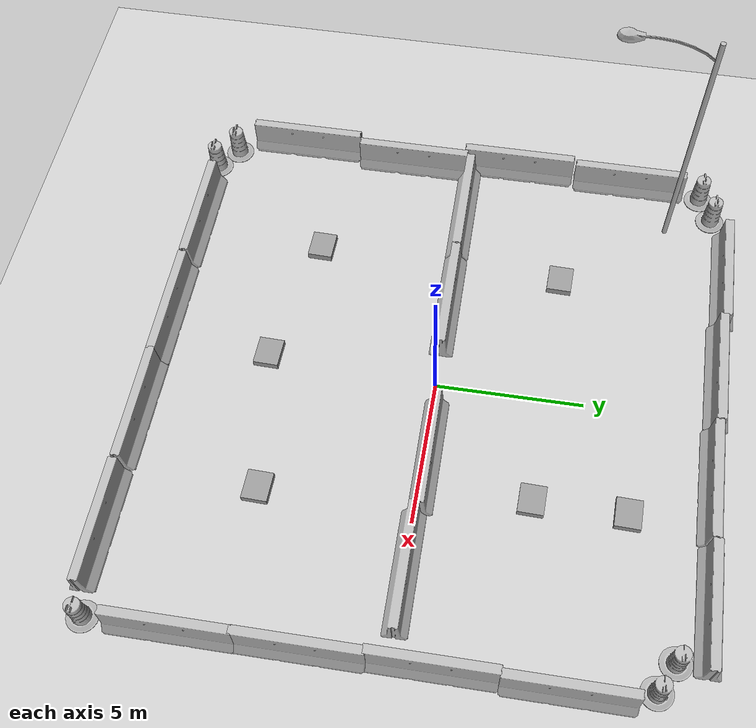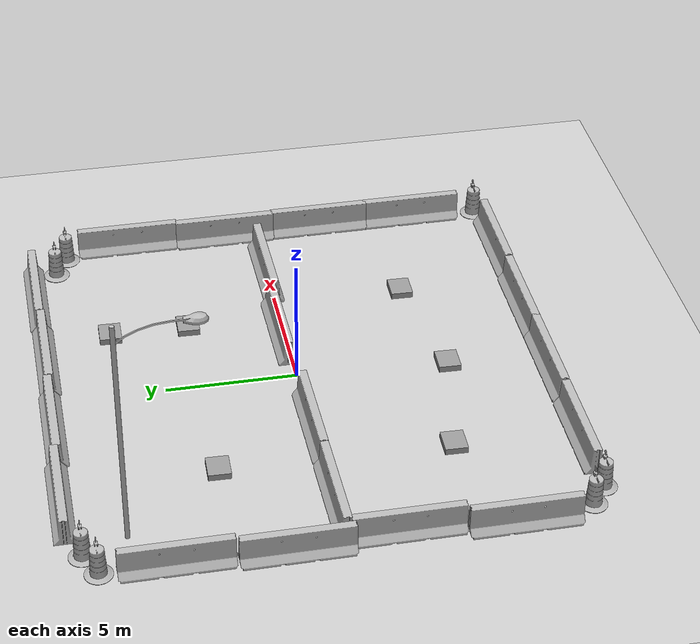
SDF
<sdf version="1.6">
 <world name="default">
  <light name="sun" type="directional">
   <pose>0 0 10 0 -0 0</pose>
   <diffuse>0.8 0.8 0.8 1</diffuse>
   <specular>0.2 0.2 0.2 1</specular>
   <attenuation>
    <range>1000</range>
    <constant>0.9</constant>
    <linear>0.01</linear>
    <quadratic>0.001</quadratic>
   </attenuation>
   <direction>-0.5 0.1 -0.9</direction>
  </light>
  <model name="ground_plane">
   <static>1</static>
   <link name="link">
    <collision name="collision">
     <geometry><plane><normal>0 0 1</normal><size>100 100</size></plane></geometry>
     <surface><friction><ode><mu>100</mu><mu2>50</mu2></ode></friction></surface>
    </collision>
    <visual name="visual">
     <cast_shadows>0</cast_shadows>
     <geometry><plane><normal>0 0 1</normal><size>100 100</size></plane></geometry>
     <material>
      <script><uri>file://media/materials/scripts/gazebo.material</uri><name>Gazebo/Grey</name></script>
     </material>
    </visual>
   </link>
  </model>
  <gravity>0 0 -9.8</gravity>
  <magnetic_field>6e-06 2.3e-05 -4.2e-05</magnetic_field>
  <atmosphere type="adiabatic"/>
  <physics name="default_physics" default="0" type="ode">
   <max_step_size>0.001</max_step_size>
   <real_time_factor>1</real_time_factor>
   <real_time_update_rate>1000</real_time_update_rate>
  </physics>
  <scene><ambient>0.4 0.4 0.4 1</ambient><background>0.7 0.7 0.7 1</background><shadows>1</shadows></scene>
  <spherical_coordinates>
   <surface_model>EARTH_WGS84</surface_model>
   <latitude_deg>0</latitude_deg>
   <longitude_deg>0</longitude_deg>
   <elevation>0</elevation>
   <heading_deg>0</heading_deg>
  </spherical_coordinates>
  <model name="jersey_barrier">
   <static>1</static>
   <link name="link">
    <visual name="visual">
     <geometry><mesh><uri>model://jersey_barrier/meshes/jersey_barrier.dae</uri></mesh></geometry>
    </visual>
    <collision name="upright">
     <pose>0 0 0.5715 0 -0 0</pose>
     <geometry><box><size>4.06542 0.3063 1.143</size></box></geometry>
    </collision>
    <collision name="base">
     <pose>0 0 0.032258 0 -0 0</pose>
     <geometry><box><size>4.06542 0.8107 0.064516</size></box></geometry>
    </collision>
    <collision name="base2">
     <pose>0 0 0.1 0 -0 0</pose>
     <geometry><box><size>4.06542 0.65 0.1</size></box></geometry>
    </collision>
    <collision name="base3">
     <pose>0 0 0.2 0 -0 0</pose>
     <geometry><box><size>4.06542 0.5 0.1</size></box></geometry>
    </collision>
    <collision name="left-angle">
     <pose>0 -0.224 0.2401 0.9 -0 0</pose>
     <geometry><box><size>4.06542 0.5 0.064516</size></box></geometry>
    </collision>
    <collision name="right-angle">
     <pose>0 0.224 0.2401 -0.9 0 0</pose>
     <geometry><box><size>4.06542 0.5 0.064516</size></box></geometry>
    </collision>
   </link>
   <pose>-5.65677 9.4608 0 0 -0 0</pose>
  </model>
  <model name="jersey_barrier_clone">
   <static>1</static>
   <link name="link">
    <visual name="visual">
     <geometry><mesh><uri>model://jersey_barrier/meshes/jersey_barrier.dae</uri></mesh></geometry>
    </visual>
    <collision name="upright">
     <pose>0 0 0.5715 0 -0 0</pose>
     <geometry><box><size>4.06542 0.3063 1.143</size></box></geometry>
    </collision>
    <collision name="base">
     <pose>0 0 0.032258 0 -0 0</pose>
     <geometry><box><size>4.06542 0.8107 0.064516</size></box></geometry>
    </collision>
    <collision name="base2">
     <pose>0 0 0.1 0 -0 0</pose>
     <geometry><box><size>4.06542 0.65 0.1</size></box></geometry>
    </collision>
    <collision name="base3">
     <pose>0 0 0.2 0 -0 0</pose>
     <geometry><box><size>4.06542 0.5 0.1</size></box></geometry>
    </collision>
    <collision name="left-angle">
     <pose>0 -0.224 0.2401 0.9 -0 0</pose>
     <geometry><box><size>4.06542 0.5 0.064516</size></box></geometry>
    </collision>
    <collision name="right-angle">
     <pose>0 0.224 0.2401 -0.9 0 0</pose>
     <geometry><box><size>4.06542 0.5 0.064516</size></box></geometry>
    </collision>
   </link>
   <pose>-1.65987 9.36075 0 0 -0 0</pose>
  </model>
  <model name="jersey_barrier_clone_0">
   <static>1</static>
   <link name="link">
    <visual name="visual">
     <geometry><mesh><uri>model://jersey_barrier/meshes/jersey_barrier.dae</uri></mesh></geometry>
    </visual>
    <collision name="upright">
     <pose>0 0 0.5715 0 -0 0</pose>
     <geometry><box><size>4.06542 0.3063 1.143</size></box></geometry>
    </collision>
    <collision name="base">
     <pose>0 0 0.032258 0 -0 0</pose>
     <geometry><box><size>4.06542 0.8107 0.064516</size></box></geometry>
    </collision>
    <collision name="base2">
     <pose>0 0 0.1 0 -0 0</pose>
     <geometry><box><size>4.06542 0.65 0.1</size></box></geometry>
    </collision>
    <collision name="base3">
     <pose>0 0 0.2 0 -0 0</pose>
     <geometry><box><size>4.06542 0.5 0.1</size></box></geometry>
    </collision>
    <collision name="left-angle">
     <pose>0 -0.224 0.2401 0.9 -0 0</pose>
     <geometry><box><size>4.06542 0.5 0.064516</size></box></geometry>
    </collision>
    <collision name="right-angle">
     <pose>0 0.224 0.2401 -0.9 0 0</pose>
     <geometry><box><size>4.06542 0.5 0.064516</size></box></geometry>
    </collision>
   </link>
   <pose>2.39773 9.29085 0 0 -0 0</pose>
  </model>
  <model name="jersey_barrier_clone_1">
   <static>1</static>
   <link name="link">
    <visual name="visual">
     <geometry><mesh><uri>model://jersey_barrier/meshes/jersey_barrier.dae</uri></mesh></geometry>
    </visual>
    <collision name="upright">
     <pose>0 0 0.5715 0 -0 0</pose>
     <geometry><box><size>4.06542 0.3063 1.143</size></box></geometry>
    </collision>
    <collision name="base">
     <pose>0 0 0.032258 0 -0 0</pose>
     <geometry><box><size>4.06542 0.8107 0.064516</size></box></geometry>
    </collision>
    <collision name="base2">
     <pose>0 0 0.1 0 -0 0</pose>
     <geometry><box><size>4.06542 0.65 0.1</size></box></geometry>
    </collision>
    <collision name="base3">
     <pose>0 0 0.2 0 -0 0</pose>
     <geometry><box><size>4.06542 0.5 0.1</size></box></geometry>
    </collision>
    <collision name="left-angle">
     <pose>0 -0.224 0.2401 0.9 -0 0</pose>
     <geometry><box><size>4.06542 0.5 0.064516</size></box></geometry>
    </collision>
    <collision name="right-angle">
     <pose>0 0.224 0.2401 -0.9 0 0</pose>
     <geometry><box><size>4.06542 0.5 0.064516</size></box></geometry>
    </collision>
   </link>
   <pose>6.45464 9.33993 0 0 -0 0</pose>
  </model>
  <model name="jersey_barrier_clone_3">
   <static>1</static>
   <link name="link">
    <visual name="visual">
     <geometry><mesh><uri>model://jersey_barrier/meshes/jersey_barrier.dae</uri></mesh></geometry>
    </visual>
    <collision name="upright">
     <pose>0 0 0.5715 0 -0 0</pose>
     <geometry><box><size>4.06542 0.3063 1.143</size></box></geometry>
    </collision>
    <collision name="base">
     <pose>0 0 0.032258 0 -0 0</pose>
     <geometry><box><size>4.06542 0.8107 0.064516</size></box></geometry>
    </collision>
    <collision name="base2">
     <pose>0 0 0.1 0 -0 0</pose>
     <geometry><box><size>4.06542 0.65 0.1</size></box></geometry>
    </collision>
    <collision name="base3">
     <pose>0 0 0.2 0 -0 0</pose>
     <geometry><box><size>4.06542 0.5 0.1</size></box></geometry>
    </collision>
    <collision name="left-angle">
     <pose>0 -0.224 0.2401 0.9 -0 0</pose>
     <geometry><box><size>4.06542 0.5 0.064516</size></box></geometry>
    </collision>
    <collision name="right-angle">
     <pose>0 0.224 0.2401 -0.9 0 0</pose>
     <geometry><box><size>4.06542 0.5 0.064516</size></box></geometry>
    </collision>
   </link>
   <pose>9.44656 5.35522 0 0 0 -1.56865</pose>
  </model>
  <model name="jersey_barrier_clone_3_clone">
   <static>1</static>
   <link name="link">
    <visual name="visual">
     <geometry><mesh><uri>model://jersey_barrier/meshes/jersey_barrier.dae</uri></mesh></geometry>
    </visual>
    <collision name="upright">
     <pose>0 0 0.5715 0 -0 0</pose>
     <geometry><box><size>4.06542 0.3063 1.143</size></box></geometry>
    </collision>
    <collision name="base">
     <pose>0 0 0.032258 0 -0 0</pose>
     <geometry><box><size>4.06542 0.8107 0.064516</size></box></geometry>
    </collision>
    <collision name="base2">
     <pose>0 0 0.1 0 -0 0</pose>
     <geometry><box><size>4.06542 0.65 0.1</size></box></geometry>
    </collision>
    <collision name="base3">
     <pose>0 0 0.2 0 -0 0</pose>
     <geometry><box><size>4.06542 0.5 0.1</size></box></geometry>
    </collision>
    <collision name="left-angle">
     <pose>0 -0.224 0.2401 0.9 -0 0</pose>
     <geometry><box><size>4.06542 0.5 0.064516</size></box></geometry>
    </collision>
    <collision name="right-angle">
     <pose>0 0.224 0.2401 -0.9 0 0</pose>
     <geometry><box><size>4.06542 0.5 0.064516</size></box></geometry>
    </collision>
   </link>
   <pose>9.3727 1.33119 0 0 0 -1.56865</pose>
  </model>
  <model name="jersey_barrier_clone_3_clone_0">
   <static>1</static>
   <link name="link">
    <visual name="visual">
     <geometry><mesh><uri>model://jersey_barrier/meshes/jersey_barrier.dae</uri></mesh></geometry>
    </visual>
    <collision name="upright">
     <pose>0 0 0.5715 0 -0 0</pose>
     <geometry><box><size>4.06542 0.3063 1.143</size></box></geometry>
    </collision>
    <collision name="base">
     <pose>0 0 0.032258 0 -0 0</pose>
     <geometry><box><size>4.06542 0.8107 0.064516</size></box></geometry>
    </collision>
    <collision name="base2">
     <pose>0 0 0.1 0 -0 0</pose>
     <geometry><box><size>4.06542 0.65 0.1</size></box></geometry>
    </collision>
    <collision name="base3">
     <pose>0 0 0.2 0 -0 0</pose>
     <geometry><box><size>4.06542 0.5 0.1</size></box></geometry>
    </collision>
    <collision name="left-angle">
     <pose>0 -0.224 0.2401 0.9 -0 0</pose>
     <geometry><box><size>4.06542 0.5 0.064516</size></box></geometry>
    </collision>
    <collision name="right-angle">
     <pose>0 0.224 0.2401 -0.9 0 0</pose>
     <geometry><box><size>4.06542 0.5 0.064516</size></box></geometry>
    </collision>
   </link>
   <pose>9.4315 -2.6268 0 0 0 -1.56865</pose>
  </model>
  <model name="jersey_barrier_clone_3_clone_1">
   <static>1</static>
   <link name="link">
    <visual name="visual">
     <geometry><mesh><uri>model://jersey_barrier/meshes/jersey_barrier.dae</uri></mesh></geometry>
    </visual>
    <collision name="upright">
     <pose>0 0 0.5715 0 -0 0</pose>
     <geometry><box><size>4.06542 0.3063 1.143</size></box></geometry>
    </collision>
    <collision name="base">
     <pose>0 0 0.032258 0 -0 0</pose>
     <geometry><box><size>4.06542 0.8107 0.064516</size></box></geometry>
    </collision>
    <collision name="base2">
     <pose>0 0 0.1 0 -0 0</pose>
     <geometry><box><size>4.06542 0.65 0.1</size></box></geometry>
    </collision>
    <collision name="base3">
     <pose>0 0 0.2 0 -0 0</pose>
     <geometry><box><size>4.06542 0.5 0.1</size></box></geometry>
    </collision>
    <collision name="left-angle">
     <pose>0 -0.224 0.2401 0.9 -0 0</pose>
     <geometry><box><size>4.06542 0.5 0.064516</size></box></geometry>
    </collision>
    <collision name="right-angle">
     <pose>0 0.224 0.2401 -0.9 0 0</pose>
     <geometry><box><size>4.06542 0.5 0.064516</size></box></geometry>
    </collision>
   </link>
   <pose>9.44969 -6.53485 0 0 0 -1.56865</pose>
  </model>
  <model name="jersey_barrier_clone_2_clone">
   <static>1</static>
   <link name="link">
    <visual name="visual">
     <geometry><mesh><uri>model://jersey_barrier/meshes/jersey_barrier.dae</uri></mesh></geometry>
    </visual>
    <collision name="upright">
     <pose>0 0 0.5715 0 -0 0</pose>
     <geometry><box><size>4.06542 0.3063 1.143</size></box></geometry>
    </collision>
    <collision name="base">
     <pose>0 0 0.032258 0 -0 0</pose>
     <geometry><box><size>4.06542 0.8107 0.064516</size></box></geometry>
    </collision>
    <collision name="base2">
     <pose>0 0 0.1 0 -0 0</pose>
     <geometry><box><size>4.06542 0.65 0.1</size></box></geometry>
    </collision>
    <collision name="base3">
     <pose>0 0 0.2 0 -0 0</pose>
     <geometry><box><size>4.06542 0.5 0.1</size></box></geometry>
    </collision>
    <collision name="left-angle">
     <pose>0 -0.224 0.2401 0.9 -0 0</pose>
     <geometry><box><size>4.06542 0.5 0.064516</size></box></geometry>
    </collision>
    <collision name="right-angle">
     <pose>0 0.224 0.2401 -0.9 0 0</pose>
     <geometry><box><size>4.06542 0.5 0.064516</size></box></geometry>
    </collision>
   </link>
   <pose>6.70657 -9.54347 0 0 -0 0</pose>
  </model>
  <model name="jersey_barrier_clone_2_clone_0">
   <static>1</static>
   <link name="link">
    <visual name="visual">
     <geometry><mesh><uri>model://jersey_barrier/meshes/jersey_barrier.dae</uri></mesh></geometry>
    </visual>
    <collision name="upright">
     <pose>0 0 0.5715 0 -0 0</pose>
     <geometry><box><size>4.06542 0.3063 1.143</size></box></geometry>
    </collision>
    <collision name="base">
     <pose>0 0 0.032258 0 -0 0</pose>
     <geometry><box><size>4.06542 0.8107 0.064516</size></box></geometry>
    </collision>
    <collision name="base2">
     <pose>0 0 0.1 0 -0 0</pose>
     <geometry><box><size>4.06542 0.65 0.1</size></box></geometry>
    </collision>
    <collision name="base3">
     <pose>0 0 0.2 0 -0 0</pose>
     <geometry><box><size>4.06542 0.5 0.1</size></box></geometry>
    </collision>
    <collision name="left-angle">
     <pose>0 -0.224 0.2401 0.9 -0 0</pose>
     <geometry><box><size>4.06542 0.5 0.064516</size></box></geometry>
    </collision>
    <collision name="right-angle">
     <pose>0 0.224 0.2401 -0.9 0 0</pose>
     <geometry><box><size>4.06542 0.5 0.064516</size></box></geometry>
    </collision>
   </link>
   <pose>2.59616 -9.50928 0 0 -0 0</pose>
  </model>
  <model name="jersey_barrier_clone_2_clone_1">
   <static>1</static>
   <link name="link">
    <visual name="visual">
     <geometry><mesh><uri>model://jersey_barrier/meshes/jersey_barrier.dae</uri></mesh></geometry>
    </visual>
    <collision name="upright">
     <pose>0 0 0.5715 0 -0 0</pose>
     <geometry><box><size>4.06542 0.3063 1.143</size></box></geometry>
    </collision>
    <collision name="base">
     <pose>0 0 0.032258 0 -0 0</pose>
     <geometry><box><size>4.06542 0.8107 0.064516</size></box></geometry>
    </collision>
    <collision name="base2">
     <pose>0 0 0.1 0 -0 0</pose>
     <geometry><box><size>4.06542 0.65 0.1</size></box></geometry>
    </collision>
    <collision name="base3">
     <pose>0 0 0.2 0 -0 0</pose>
     <geometry><box><size>4.06542 0.5 0.1</size></box></geometry>
    </collision>
    <collision name="left-angle">
     <pose>0 -0.224 0.2401 0.9 -0 0</pose>
     <geometry><box><size>4.06542 0.5 0.064516</size></box></geometry>
    </collision>
    <collision name="right-angle">
     <pose>0 0.224 0.2401 -0.9 0 0</pose>
     <geometry><box><size>4.06542 0.5 0.064516</size></box></geometry>
    </collision>
   </link>
   <pose>-1.33414 -9.50852 0 0 -0 0</pose>
  </model>
  <model name="jersey_barrier_clone_2_clone_2">
   <static>1</static>
   <link name="link">
    <visual name="visual">
     <geometry><mesh><uri>model://jersey_barrier/meshes/jersey_barrier.dae</uri></mesh></geometry>
    </visual>
    <collision name="upright">
     <pose>0 0 0.5715 0 -0 0</pose>
     <geometry><box><size>4.06542 0.3063 1.143</size></box></geometry>
    </collision>
    <collision name="base">
     <pose>0 0 0.032258 0 -0 0</pose>
     <geometry><box><size>4.06542 0.8107 0.064516</size></box></geometry>
    </collision>
    <collision name="base2">
     <pose>0 0 0.1 0 -0 0</pose>
     <geometry><box><size>4.06542 0.65 0.1</size></box></geometry>
    </collision>
    <collision name="base3">
     <pose>0 0 0.2 0 -0 0</pose>
     <geometry><box><size>4.06542 0.5 0.1</size></box></geometry>
    </collision>
    <collision name="left-angle">
     <pose>0 -0.224 0.2401 0.9 -0 0</pose>
     <geometry><box><size>4.06542 0.5 0.064516</size></box></geometry>
    </collision>
    <collision name="right-angle">
     <pose>0 0.224 0.2401 -0.9 0 0</pose>
     <geometry><box><size>4.06542 0.5 0.064516</size></box></geometry>
    </collision>
   </link>
   <pose>-5.44605 -9.49634 0 0 -0 0</pose>
  </model>
  <model name="jersey_barrier_clone_3_clone_1_clone">
   <static>1</static>
   <link name="link">
    <visual name="visual">
     <geometry><mesh><uri>model://jersey_barrier/meshes/jersey_barrier.dae</uri></mesh></geometry>
    </visual>
    <collision name="upright">
     <pose>0 0 0.5715 0 -0 0</pose>
     <geometry><box><size>4.06542 0.3063 1.143</size></box></geometry>
    </collision>
    <collision name="base">
     <pose>0 0 0.032258 0 -0 0</pose>
     <geometry><box><size>4.06542 0.8107 0.064516</size></box></geometry>
    </collision>
    <collision name="base2">
     <pose>0 0 0.1 0 -0 0</pose>
     <geometry><box><size>4.06542 0.65 0.1</size></box></geometry>
    </collision>
    <collision name="base3">
     <pose>0 0 0.2 0 -0 0</pose>
     <geometry><box><size>4.06542 0.5 0.1</size></box></geometry>
    </collision>
    <collision name="left-angle">
     <pose>0 -0.224 0.2401 0.9 -0 0</pose>
     <geometry><box><size>4.06542 0.5 0.064516</size></box></geometry>
    </collision>
    <collision name="right-angle">
     <pose>0 0.224 0.2401 -0.9 0 0</pose>
     <geometry><box><size>4.06542 0.5 0.064516</size></box></geometry>
    </collision>
   </link>
   <pose>-9.54289 -6.33149 0 0 0 -1.56865</pose>
  </model>
  <model name="jersey_barrier_clone_3_clone_1_clone_0">
   <static>1</static>
   <link name="link">
    <visual name="visual">
     <geometry><mesh><uri>model://jersey_barrier/meshes/jersey_barrier.dae</uri></mesh></geometry>
    </visual>
    <collision name="upright">
     <pose>0 0 0.5715 0 -0 0</pose>
     <geometry><box><size>4.06542 0.3063 1.143</size></box></geometry>
    </collision>
    <collision name="base">
     <pose>0 0 0.032258 0 -0 0</pose>
     <geometry><box><size>4.06542 0.8107 0.064516</size></box></geometry>
    </collision>
    <collision name="base2">
     <pose>0 0 0.1 0 -0 0</pose>
     <geometry><box><size>4.06542 0.65 0.1</size></box></geometry>
    </collision>
    <collision name="base3">
     <pose>0 0 0.2 0 -0 0</pose>
     <geometry><box><size>4.06542 0.5 0.1</size></box></geometry>
    </collision>
    <collision name="left-angle">
     <pose>0 -0.224 0.2401 0.9 -0 0</pose>
     <geometry><box><size>4.06542 0.5 0.064516</size></box></geometry>
    </collision>
    <collision name="right-angle">
     <pose>0 0.224 0.2401 -0.9 0 0</pose>
     <geometry><box><size>4.06542 0.5 0.064516</size></box></geometry>
    </collision>
   </link>
   <pose>-9.25613 -2.23967 0 0 0 -1.56865</pose>
  </model>
  <model name="jersey_barrier_clone_3_clone_1_clone_1">
   <static>1</static>
   <link name="link">
    <visual name="visual">
     <geometry><mesh><uri>model://jersey_barrier/meshes/jersey_barrier.dae</uri></mesh></geometry>
    </visual>
    <collision name="upright">
     <pose>0 0 0.5715 0 -0 0</pose>
     <geometry><box><size>4.06542 0.3063 1.143</size></box></geometry>
    </collision>
    <collision name="base">
     <pose>0 0 0.032258 0 -0 0</pose>
     <geometry><box><size>4.06542 0.8107 0.064516</size></box></geometry>
    </collision>
    <collision name="base2">
     <pose>0 0 0.1 0 -0 0</pose>
     <geometry><box><size>4.06542 0.65 0.1</size></box></geometry>
    </collision>
    <collision name="base3">
     <pose>0 0 0.2 0 -0 0</pose>
     <geometry><box><size>4.06542 0.5 0.1</size></box></geometry>
    </collision>
    <collision name="left-angle">
     <pose>0 -0.224 0.2401 0.9 -0 0</pose>
     <geometry><box><size>4.06542 0.5 0.064516</size></box></geometry>
    </collision>
    <collision name="right-angle">
     <pose>0 0.224 0.2401 -0.9 0 0</pose>
     <geometry><box><size>4.06542 0.5 0.064516</size></box></geometry>
    </collision>
   </link>
   <pose>-9.58952 1.69745 0 0 0 -1.56865</pose>
  </model>
  <model name="jersey_barrier_clone_3_clone_1_clone_2">
   <static>1</static>
   <link name="link">
    <visual name="visual">
     <geometry><mesh><uri>model://jersey_barrier/meshes/jersey_barrier.dae</uri></mesh></geometry>
    </visual>
    <collision name="upright">
     <pose>0 0 0.5715 0 -0 0</pose>
     <geometry><box><size>4.06542 0.3063 1.143</size></box></geometry>
    </collision>
    <collision name="base">
     <pose>0 0 0.032258 0 -0 0</pose>
     <geometry><box><size>4.06542 0.8107 0.064516</size></box></geometry>
    </collision>
    <collision name="base2">
     <pose>0 0 0.1 0 -0 0</pose>
     <geometry><box><size>4.06542 0.65 0.1</size></box></geometry>
    </collision>
    <collision name="base3">
     <pose>0 0 0.2 0 -0 0</pose>
     <geometry><box><size>4.06542 0.5 0.1</size></box></geometry>
    </collision>
    <collision name="left-angle">
     <pose>0 -0.224 0.2401 0.9 -0 0</pose>
     <geometry><box><size>4.06542 0.5 0.064516</size></box></geometry>
    </collision>
    <collision name="right-angle">
     <pose>0 0.224 0.2401 -0.9 0 0</pose>
     <geometry><box><size>4.06542 0.5 0.064516</size></box></geometry>
    </collision>
   </link>
   <pose>-9.44715 5.83721 0 0 0 -1.56865</pose>
  </model>
  <model name="Construction Barrel">
   <link name="link">
    <inertial>
     <pose>0 0 0.4 0 -0 0</pose>
     <mass>500</mass>
     <inertia><ixx>51.2096</ixx><iyy>51.2096</iyy><izz>25</izz><ixy>0</ixy><ixz>0</ixz><iyz>0</iyz></inertia>
    </inertial>
    <collision name="collision">
     <geometry><mesh><uri>model://construction_barrel/meshes/construction_barrel.dae</uri></mesh></geometry>
    </collision>
    <visual name="visual">
     <geometry><mesh><uri>model://construction_barrel/meshes/construction_barrel.dae</uri></mesh></geometry>
    </visual>
   </link>
   <pose>9.07405 7.91026 0 0 0 -0.00036</pose>
  </model>
  <model name="Construction Barrel_0">
   <link name="link">
    <inertial>
     <pose>0 0 0.4 0 -0 0</pose>
     <mass>500</mass>
     <inertia><ixx>51.2096</ixx><iyy>51.2096</iyy><izz>25</izz><ixy>0</ixy><ixz>0</ixz><iyz>0</iyz></inertia>
    </inertial>
    <collision name="collision">
     <geometry><mesh><uri>model://construction_barrel/meshes/construction_barrel.dae</uri></mesh></geometry>
    </collision>
    <visual name="visual">
     <geometry><mesh><uri>model://construction_barrel/meshes/construction_barrel.dae</uri></mesh></geometry>
    </visual>
   </link>
   <pose>8.12789 8.41605 0 0 0 -0.000329</pose>
  </model>
  <model name="Construction Barrel_1">
   <link name="link">
    <inertial>
     <pose>0 0 0.4 0 -0 0</pose>
     <mass>500</mass>
     <inertia><ixx>51.2096</ixx><iyy>51.2096</iyy><izz>25</izz><ixy>0</ixy><ixz>0</ixz><iyz>0</iyz></inertia>
    </inertial>
    <collision name="collision">
     <geometry><mesh><uri>model://construction_barrel/meshes/construction_barrel.dae</uri></mesh></geometry>
    </collision>
    <visual name="visual">
     <geometry><mesh><uri>model://construction_barrel/meshes/construction_barrel.dae</uri></mesh></geometry>
    </visual>
   </link>
   <pose>-9.273 8.48361 0 0 0 -0.000315</pose>
  </model>
  <model name="Construction Barrel_2">
   <link name="link">
    <inertial>
     <pose>0 0 0.4 0 -0 0</pose>
     <mass>500</mass>
     <inertia><ixx>51.2096</ixx><iyy>51.2096</iyy><izz>25</izz><ixy>0</ixy><ixz>0</ixz><iyz>0</iyz></inertia>
    </inertial>
    <collision name="collision">
     <geometry><mesh><uri>model://construction_barrel/meshes/construction_barrel.dae</uri></mesh></geometry>
    </collision>
    <visual name="visual">
     <geometry><mesh><uri>model://construction_barrel/meshes/construction_barrel.dae</uri></mesh></geometry>
    </visual>
   </link>
   <pose>-8.34397 8.93822 0 0 0 -0.000215</pose>
  </model>
  <model name="Construction Barrel_3">
   <link name="link">
    <inertial>
     <pose>0 0 0.4 0 -0 0</pose>
     <mass>500</mass>
     <inertia><ixx>51.2096</ixx><iyy>51.2096</iyy><izz>25</izz><ixy>0</ixy><ixz>0</ixz><iyz>0</iyz></inertia>
    </inertial>
    <collision name="collision">
     <geometry><mesh><uri>model://construction_barrel/meshes/construction_barrel.dae</uri></mesh></geometry>
    </collision>
    <visual name="visual">
     <geometry><mesh><uri>model://construction_barrel/meshes/construction_barrel.dae</uri></mesh></geometry>
    </visual>
   </link>
   <pose>9.45321 -9.29465 0 0 0 -0.000317</pose>
  </model>
  <model name="Construction Barrel_4">
   <link name="link">
    <inertial>
     <pose>0 0 0.4 0 -0 0</pose>
     <mass>500</mass>
     <inertia><ixx>51.2096</ixx><iyy>51.2096</iyy><izz>25</izz><ixy>0</ixy><ixz>0</ixz><iyz>0</iyz></inertia>
    </inertial>
    <collision name="collision">
     <geometry><mesh><uri>model://construction_barrel/meshes/construction_barrel.dae</uri></mesh></geometry>
    </collision>
    <visual name="visual">
     <geometry><mesh><uri>model://construction_barrel/meshes/construction_barrel.dae</uri></mesh></geometry>
    </visual>
   </link>
   <pose>-8.1335 -9.57203 0 0 0 -0.00077</pose>
  </model>
  <model name="Construction Barrel_5">
   <link name="link">
    <inertial>
     <pose>0 0 0.4 0 -0 0</pose>
     <mass>500</mass>
     <inertia><ixx>51.2096</ixx><iyy>51.2096</iyy><izz>25</izz><ixy>0</ixy><ixz>0</ixz><iyz>0</iyz></inertia>
    </inertial>
    <collision name="collision">
     <geometry><mesh><uri>model://construction_barrel/meshes/construction_barrel.dae</uri></mesh></geometry>
    </collision>
    <visual name="visual">
     <geometry><mesh><uri>model://construction_barrel/meshes/construction_barrel.dae</uri></mesh></geometry>
    </visual>
   </link>
   <pose>-8.93884 -8.96038 0 0 0 -0.00068</pose>
  </model>
  <model name="jersey_barrier_clone_3_clone_1_clone_2_clone">
   <static>1</static>
   <link name="link">
    <visual name="visual">
     <geometry><mesh><uri>model://jersey_barrier/meshes/jersey_barrier.dae</uri></mesh></geometry>
    </visual>
    <collision name="upright">
     <pose>0 0 0.5715 0 -0 0</pose>
     <geometry><box><size>4.06542 0.3063 1.143</size></box></geometry>
    </collision>
    <collision name="base">
     <pose>0 0 0.032258 0 -0 0</pose>
     <geometry><box><size>4.06542 0.8107 0.064516</size></box></geometry>
    </collision>
    <collision name="base2">
     <pose>0 0 0.1 0 -0 0</pose>
     <geometry><box><size>4.06542 0.65 0.1</size></box></geometry>
    </collision>
    <collision name="base3">
     <pose>0 0 0.2 0 -0 0</pose>
     <geometry><box><size>4.06542 0.5 0.1</size></box></geometry>
    </collision>
    <collision name="left-angle">
     <pose>0 -0.224 0.2401 0.9 -0 0</pose>
     <geometry><box><size>4.06542 0.5 0.064516</size></box></geometry>
    </collision>
    <collision name="right-angle">
     <pose>0 0.224 0.2401 -0.9 0 0</pose>
     <geometry><box><size>4.06542 0.5 0.064516</size></box></geometry>
    </collision>
   </link>
   <pose>-7.22154 -0.066842 0 0 -0 0.010774</pose>
  </model>
  <model name="jersey_barrier_clone_3_clone_1_clone_2_clone_clone">
   <static>1</static>
   <link name="link">
    <visual name="visual">
     <geometry><mesh><uri>model://jersey_barrier/meshes/jersey_barrier.dae</uri></mesh></geometry>
    </visual>
    <collision name="upright">
     <pose>0 0 0.5715 0 -0 0</pose>
     <geometry><box><size>4.06542 0.3063 1.143</size></box></geometry>
    </collision>
    <collision name="base">
     <pose>0 0 0.032258 0 -0 0</pose>
     <geometry><box><size>4.06542 0.8107 0.064516</size></box></geometry>
    </collision>
    <collision name="base2">
     <pose>0 0 0.1 0 -0 0</pose>
     <geometry><box><size>4.06542 0.65 0.1</size></box></geometry>
    </collision>
    <collision name="base3">
     <pose>0 0 0.2 0 -0 0</pose>
     <geometry><box><size>4.06542 0.5 0.1</size></box></geometry>
    </collision>
    <collision name="left-angle">
     <pose>0 -0.224 0.2401 0.9 -0 0</pose>
     <geometry><box><size>4.06542 0.5 0.064516</size></box></geometry>
    </collision>
    <collision name="right-angle">
     <pose>0 0.224 0.2401 -0.9 0 0</pose>
     <geometry><box><size>4.06542 0.5 0.064516</size></box></geometry>
    </collision>
   </link>
   <pose>-3.14115 -0.028868 0 0 -0 0.010774</pose>
  </model>
  <model name="jersey_barrier_clone_3_clone_1_clone_2_clone_clone_clone">
   <static>1</static>
   <link name="link">
    <visual name="visual">
     <geometry><mesh><uri>model://jersey_barrier/meshes/jersey_barrier.dae</uri></mesh></geometry>
    </visual>
    <collision name="upright">
     <pose>0 0 0.5715 0 -0 0</pose>
     <geometry><box><size>4.06542 0.3063 1.143</size></box></geometry>
    </collision>
    <collision name="base">
     <pose>0 0 0.032258 0 -0 0</pose>
     <geometry><box><size>4.06542 0.8107 0.064516</size></box></geometry>
    </collision>
    <collision name="base2">
     <pose>0 0 0.1 0 -0 0</pose>
     <geometry><box><size>4.06542 0.65 0.1</size></box></geometry>
    </collision>
    <collision name="base3">
     <pose>0 0 0.2 0 -0 0</pose>
     <geometry><box><size>4.06542 0.5 0.1</size></box></geometry>
    </collision>
    <collision name="left-angle">
     <pose>0 -0.224 0.2401 0.9 -0 0</pose>
     <geometry><box><size>4.06542 0.5 0.064516</size></box></geometry>
    </collision>
    <collision name="right-angle">
     <pose>0 0.224 0.2401 -0.9 0 0</pose>
     <geometry><box><size>4.06542 0.5 0.064516</size></box></geometry>
    </collision>
   </link>
   <pose>2.66559 0.183351 0 0 -0 0.010774</pose>
  </model>
  <model name="jersey_barrier_clone_3_clone_1_clone_2_clone_clone_clone_clone">
   <static>1</static>
   <link name="link">
    <visual name="visual">
     <geometry><mesh><uri>model://jersey_barrier/meshes/jersey_barrier.dae</uri></mesh></geometry>
    </visual>
    <collision name="upright">
     <pose>0 0 0.5715 0 -0 0</pose>
     <geometry><box><size>4.06542 0.3063 1.143</size></box></geometry>
    </collision>
    <collision name="base">
     <pose>0 0 0.032258 0 -0 0</pose>
     <geometry><box><size>4.06542 0.8107 0.064516</size></box></geometry>
    </collision>
    <collision name="base2">
     <pose>0 0 0.1 0 -0 0</pose>
     <geometry><box><size>4.06542 0.65 0.1</size></box></geometry>
    </collision>
    <collision name="base3">
     <pose>0 0 0.2 0 -0 0</pose>
     <geometry><box><size>4.06542 0.5 0.1</size></box></geometry>
    </collision>
    <collision name="left-angle">
     <pose>0 -0.224 0.2401 0.9 -0 0</pose>
     <geometry><box><size>4.06542 0.5 0.064516</size></box></geometry>
    </collision>
    <collision name="right-angle">
     <pose>0 0.224 0.2401 -0.9 0 0</pose>
     <geometry><box><size>4.06542 0.5 0.064516</size></box></geometry>
    </collision>
   </link>
   <pose>6.65894 0.057987 0 0 -0 0.010774</pose>
  </model>
  <model name="movable_box">
   <link name="link">
    <inertial>
     <mass>1</mass>
     <inertia>
      <ixx>0.166667</ixx>
      <ixy>0</ixy>
      <ixz>0</ixz>
      <iyy>0.166667</iyy>
      <iyz>0</iyz>
      <izz>0.166667</izz>
     </inertia>
    </inertial>
    <visual name="visual">
     <geometry><box><size>0.992006 0.853559 0.246742</size></box></geometry>
     <material>
      <script><name>Gazebo/Grey</name><uri>file://media/materials/scripts/gazebo.material</uri></script>
      <shader type="pixel"><normal_map>__default__</normal_map></shader>
      <ambient>0.3 0.3 0.3 1</ambient>
      <diffuse>0.7 0.7 0.7 1</diffuse>
      <specular>0.01 0.01 0.01 1</specular>
      <emissive>0 0 0 1</emissive>
     </material>
    </visual>
    <collision name="collision">
     <geometry><box><size>0.992006 0.853559 0.246742</size></box></geometry>
     <surface>
      <friction>
       <ode><mu>1</mu><mu2>1</mu2><fdir1>0 0 0</fdir1><slip1>0</slip1><slip2>0</slip2></ode>
       <torsional>
        <coefficient>1</coefficient>
        <patch_radius>0</patch_radius>
        <surface_radius>0</surface_radius>
        <use_patch_radius>1</use_patch_radius>
        <ode><slip>0</slip></ode>
       </torsional>
      </friction>
      <bounce><restitution_coefficient>0</restitution_coefficient><threshold>1e+06</threshold></bounce>
      <contact>
       <collide_without_contact>0</collide_without_contact>
       <collide_without_contact_bitmask>1</collide_without_contact_bitmask>
       <collide_bitmask>1</collide_bitmask>
       <ode>
        <soft_cfm>0</soft_cfm>
        <soft_erp>0.2</soft_erp>
        <kp>1e+13</kp>
        <kd>1</kd>
        <max_vel>0.01</max_vel>
        <min_depth>0</min_depth>
       </ode>
       <bullet>
        <split_impulse>1</split_impulse>
        <split_impulse_penetration_threshold>-0.01</split_impulse_penetration_threshold>
        <soft_cfm>0</soft_cfm>
        <soft_erp>0.2</soft_erp>
        <kp>1e+13</kp>
        <kd>1</kd>
       </bullet>
      </contact>
     </surface>
    </collision>
   </link>
   <static>0</static>
   <pose>4.56798 -5.03907 0.123371 0 0 -0.025104</pose>
  </model>
  <model name="Lamp Post">
   <static>1</static>
   <link name="link">
    <collision name="collision">
     <geometry><mesh><uri>model://lamp_post/meshes/lamp_post.dae</uri><scale>3 3 3</scale></mesh></geometry>
    </collision>
    <visual name="visual">
     <geometry><mesh><uri>model://lamp_post/meshes/lamp_post.dae</uri><scale>3 3 3</scale></mesh></geometry>
    </visual>
   </link>
   <pose>-7.65064 7.30257 0 0 -0 0</pose>
  </model>
  <model name="movable_box_clone">
   <link name="link">
    <inertial>
     <mass>1</mass>
     <inertia>
      <ixx>0.166667</ixx>
      <ixy>0</ixy>
      <ixz>0</ixz>
      <iyy>0.166667</iyy>
      <iyz>0</iyz>
      <izz>0.166667</izz>
     </inertia>
    </inertial>
    <visual name="visual">
     <geometry><box><size>0.992006 0.853559 0.246742</size></box></geometry>
     <material>
      <script><name>Gazebo/Grey</name><uri>file://media/materials/scripts/gazebo.material</uri></script>
      <shader type="pixel"><normal_map>__default__</normal_map></shader>
      <ambient>0.3 0.3 0.3 1</ambient>
      <diffuse>0.7 0.7 0.7 1</diffuse>
      <specular>0.01 0.01 0.01 1</specular>
      <emissive>0 0 0 1</emissive>
     </material>
    </visual>
    <collision name="collision">
     <geometry><box><size>0.992006 0.853559 0.246742</size></box></geometry>
     <surface>
      <friction>
       <ode><mu>1</mu><mu2>1</mu2><fdir1>0 0 0</fdir1><slip1>0</slip1><slip2>0</slip2></ode>
       <torsional>
        <coefficient>1</coefficient>
        <patch_radius>0</patch_radius>
        <surface_radius>0</surface_radius>
        <use_patch_radius>1</use_patch_radius>
        <ode><slip>0</slip></ode>
       </torsional>
      </friction>
      <bounce><restitution_coefficient>0</restitution_coefficient><threshold>1e+06</threshold></bounce>
      <contact>
       <collide_without_contact>0</collide_without_contact>
       <collide_without_contact_bitmask>1</collide_without_contact_bitmask>
       <collide_bitmask>1</collide_bitmask>
       <ode>
        <soft_cfm>0</soft_cfm>
        <soft_erp>0.2</soft_erp>
        <kp>1e+13</kp>
        <kd>1</kd>
        <max_vel>0.01</max_vel>
        <min_depth>0</min_depth>
       </ode>
       <bullet>
        <split_impulse>1</split_impulse>
        <split_impulse_penetration_threshold>-0.01</split_impulse_penetration_threshold>
        <soft_cfm>0</soft_cfm>
        <soft_erp>0.2</soft_erp>
        <kp>1e+13</kp>
        <kd>1</kd>
       </bullet>
      </contact>
     </surface>
    </collision>
   </link>
   <static>0</static>
   <pose>-4.98799 -4.9014 0.123371 0 0 -0.025104</pose>
  </model>
  <model name="movable_box_clone_0">
   <link name="link">
    <inertial>
     <mass>1</mass>
     <inertia>
      <ixx>0.166667</ixx>
      <ixy>0</ixy>
      <ixz>0</ixz>
      <iyy>0.166667</iyy>
      <iyz>0</iyz>
      <izz>0.166667</izz>
     </inertia>
    </inertial>
    <visual name="visual">
     <geometry><box><size>0.992006 0.853559 0.246742</size></box></geometry>
     <material>
      <script><name>Gazebo/Grey</name><uri>file://media/materials/scripts/gazebo.material</uri></script>
      <shader type="pixel"><normal_map>__default__</normal_map></shader>
      <ambient>0.3 0.3 0.3 1</ambient>
      <diffuse>0.7 0.7 0.7 1</diffuse>
      <specular>0.01 0.01 0.01 1</specular>
      <emissive>0 0 0 1</emissive>
     </material>
    </visual>
    <collision name="collision">
     <geometry><box><size>0.992006 0.853559 0.246742</size></box></geometry>
     <surface>
      <friction>
       <ode><mu>1</mu><mu2>1</mu2><fdir1>0 0 0</fdir1><slip1>0</slip1><slip2>0</slip2></ode>
       <torsional>
        <coefficient>1</coefficient>
        <patch_radius>0</patch_radius>
        <surface_radius>0</surface_radius>
        <use_patch_radius>1</use_patch_radius>
        <ode><slip>0</slip></ode>
       </torsional>
      </friction>
      <bounce><restitution_coefficient>0</restitution_coefficient><threshold>1e+06</threshold></bounce>
      <contact>
       <collide_without_contact>0</collide_without_contact>
       <collide_without_contact_bitmask>1</collide_without_contact_bitmask>
       <collide_bitmask>1</collide_bitmask>
       <ode>
        <soft_cfm>0</soft_cfm>
        <soft_erp>0.2</soft_erp>
        <kp>1e+13</kp>
        <kd>1</kd>
        <max_vel>0.01</max_vel>
        <min_depth>0</min_depth>
       </ode>
       <bullet>
        <split_impulse>1</split_impulse>
        <split_impulse_penetration_threshold>-0.01</split_impulse_penetration_threshold>
        <soft_cfm>0</soft_cfm>
        <soft_erp>0.2</soft_erp>
        <kp>1e+13</kp>
        <kd>1</kd>
       </bullet>
      </contact>
     </surface>
    </collision>
   </link>
   <static>0</static>
   <pose>3.68731 3.66356 0.123371 0 0 -0.025104</pose>
  </model>
  <model name="movable_box_clone_0_clone">
   <link name="link">
    <inertial>
     <mass>1</mass>
     <inertia>
      <ixx>0.166667</ixx>
      <ixy>0</ixy>
      <ixz>0</ixz>
      <iyy>0.166667</iyy>
      <iyz>0</iyz>
      <izz>0.166667</izz>
     </inertia>
    </inertial>
    <visual name="visual">
     <geometry><box><size>0.992006 0.853559 0.246742</size></box></geometry>
     <material>
      <script><name>Gazebo/Grey</name><uri>file://media/materials/scripts/gazebo.material</uri></script>
      <shader type="pixel"><normal_map>__default__</normal_map></shader>
      <ambient>0.3 0.3 0.3 1</ambient>
      <diffuse>0.7 0.7 0.7 1</diffuse>
      <specular>0.01 0.01 0.01 1</specular>
      <emissive>0 0 0 1</emissive>
     </material>
    </visual>
    <collision name="collision">
     <geometry><box><size>0.992006 0.853559 0.246742</size></box></geometry>
     <surface>
      <friction>
       <ode><mu>1</mu><mu2>1</mu2><fdir1>0 0 0</fdir1><slip1>0</slip1><slip2>0</slip2></ode>
       <torsional>
        <coefficient>1</coefficient>
        <patch_radius>0</patch_radius>
        <surface_radius>0</surface_radius>
        <use_patch_radius>1</use_patch_radius>
        <ode><slip>0</slip></ode>
       </torsional>
      </friction>
      <bounce><restitution_coefficient>0</restitution_coefficient><threshold>1e+06</threshold></bounce>
      <contact>
       <collide_without_contact>0</collide_without_contact>
       <collide_without_contact_bitmask>1</collide_without_contact_bitmask>
       <collide_bitmask>1</collide_bitmask>
       <ode>
        <soft_cfm>0</soft_cfm>
        <soft_erp>0.2</soft_erp>
        <kp>1e+13</kp>
        <kd>1</kd>
        <max_vel>0.01</max_vel>
        <min_depth>0</min_depth>
       </ode>
       <bullet>
        <split_impulse>1</split_impulse>
        <split_impulse_penetration_threshold>-0.01</split_impulse_penetration_threshold>
        <soft_cfm>0</soft_cfm>
        <soft_erp>0.2</soft_erp>
        <kp>1e+13</kp>
        <kd>1</kd>
       </bullet>
      </contact>
     </surface>
    </collision>
   </link>
   <static>0</static>
   <pose>3.69628 6.71845 0.123371 0 0 -0.025104</pose>
  </model>
  <model name="movable_box_clone_0_clone_0">
   <link name="link">
    <inertial>
     <mass>1</mass>
     <inertia>
      <ixx>0.166667</ixx>
      <ixy>0</ixy>
      <ixz>0</ixz>
      <iyy>0.166667</iyy>
      <iyz>0</iyz>
      <izz>0.166667</izz>
     </inertia>
    </inertial>
    <visual name="visual">
     <geometry><box><size>0.992006 0.853559 0.246742</size></box></geometry>
     <material>
      <script><name>Gazebo/Grey</name><uri>file://media/materials/scripts/gazebo.material</uri></script>
      <shader type="pixel"><normal_map>__default__</normal_map></shader>
      <ambient>0.3 0.3 0.3 1</ambient>
      <diffuse>0.7 0.7 0.7 1</diffuse>
      <specular>0.01 0.01 0.01 1</specular>
      <emissive>0 0 0 1</emissive>
     </material>
    </visual>
    <collision name="collision">
     <geometry><box><size>0.992006 0.853559 0.246742</size></box></geometry>
     <surface>
      <friction>
       <ode><mu>1</mu><mu2>1</mu2><fdir1>0 0 0</fdir1><slip1>0</slip1><slip2>0</slip2></ode>
       <torsional>
        <coefficient>1</coefficient>
        <patch_radius>0</patch_radius>
        <surface_radius>0</surface_radius>
        <use_patch_radius>1</use_patch_radius>
        <ode><slip>0</slip></ode>
       </torsional>
      </friction>
      <bounce><restitution_coefficient>0</restitution_coefficient><threshold>1e+06</threshold></bounce>
      <contact>
       <collide_without_contact>0</collide_without_contact>
       <collide_without_contact_bitmask>1</collide_without_contact_bitmask>
       <collide_bitmask>1</collide_bitmask>
       <ode>
        <soft_cfm>0</soft_cfm>
        <soft_erp>0.2</soft_erp>
        <kp>1e+13</kp>
        <kd>1</kd>
        <max_vel>0.01</max_vel>
        <min_depth>0</min_depth>
       </ode>
       <bullet>
        <split_impulse>1</split_impulse>
        <split_impulse_penetration_threshold>-0.01</split_impulse_penetration_threshold>
        <soft_cfm>0</soft_cfm>
        <soft_erp>0.2</soft_erp>
        <kp>1e+13</kp>
        <kd>1</kd>
       </bullet>
      </contact>
     </surface>
    </collision>
   </link>
   <static>0</static>
   <pose>-4.82279 3.73591 0.123371 0 0 -0.025104</pose>
  </model>
  <model name="movable_box_clone_1">
   <link name="link">
    <inertial>
     <mass>1</mass>
     <inertia>
      <ixx>0.166667</ixx>
      <ixy>0</ixy>
      <ixz>0</ixz>
      <iyy>0.166667</iyy>
      <iyz>0</iyz>
      <izz>0.166667</izz>
     </inertia>
    </inertial>
    <visual name="visual">
     <geometry><box><size>0.992006 0.853559 0.246742</size></box></geometry>
     <material>
      <script><name>Gazebo/Grey</name><uri>file://media/materials/scripts/gazebo.material</uri></script>
      <shader type="pixel"><normal_map>__default__</normal_map></shader>
      <ambient>0.3 0.3 0.3 1</ambient>
      <diffuse>0.7 0.7 0.7 1</diffuse>
      <specular>0.01 0.01 0.01 1</specular>
      <emissive>0 0 0 1</emissive>
     </material>
    </visual>
    <collision name="collision">
     <geometry><box><size>0.992006 0.853559 0.246742</size></box></geometry>
     <surface>
      <friction>
       <ode><mu>1</mu><mu2>1</mu2><fdir1>0 0 0</fdir1><slip1>0</slip1><slip2>0</slip2></ode>
       <torsional>
        <coefficient>1</coefficient>
        <patch_radius>0</patch_radius>
        <surface_radius>0</surface_radius>
        <use_patch_radius>1</use_patch_radius>
        <ode><slip>0</slip></ode>
       </torsional>
      </friction>
      <bounce><restitution_coefficient>0</restitution_coefficient><threshold>1e+06</threshold></bounce>
      <contact>
       <collide_without_contact>0</collide_without_contact>
       <collide_without_contact_bitmask>1</collide_without_contact_bitmask>
       <collide_bitmask>1</collide_bitmask>
       <ode>
        <soft_cfm>0</soft_cfm>
        <soft_erp>0.2</soft_erp>
        <kp>1e+13</kp>
        <kd>1</kd>
        <max_vel>0.01</max_vel>
        <min_depth>0</min_depth>
       </ode>
       <bullet>
        <split_impulse>1</split_impulse>
        <split_impulse_penetration_threshold>-0.01</split_impulse_penetration_threshold>
        <soft_cfm>0</soft_cfm>
        <soft_erp>0.2</soft_erp>
        <kp>1e+13</kp>
        <kd>1</kd>
       </bullet>
      </contact>
     </surface>
    </collision>
   </link>
   <static>0</static>
   <pose>-0.321863 -5.80855 0.123371 0 0 -0.025104</pose>
  </model>
 </world>
</sdf>
